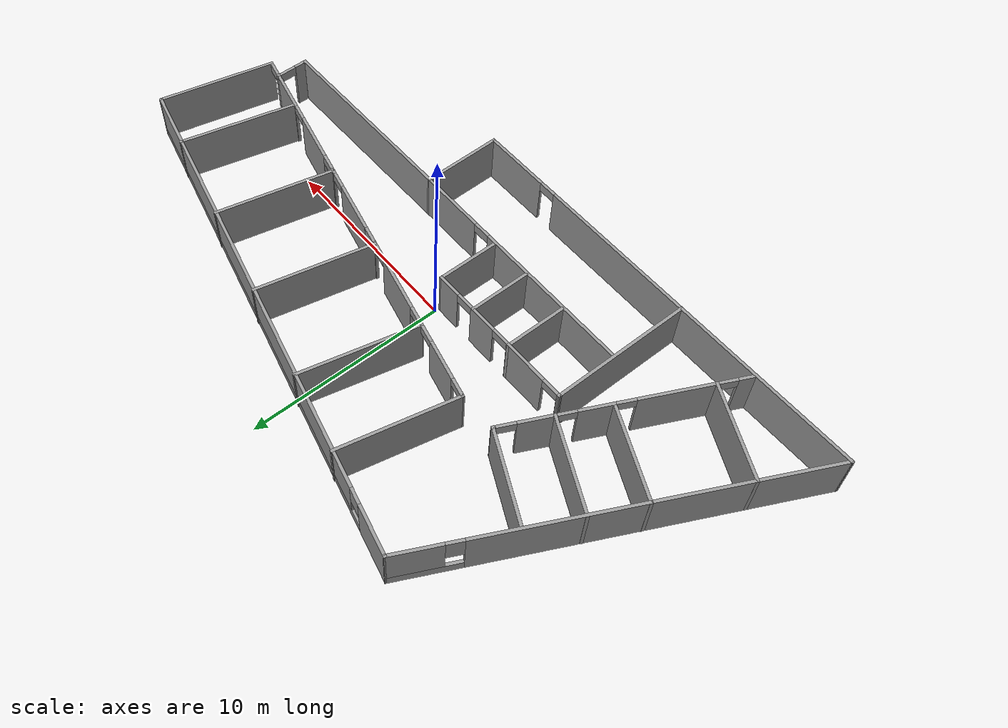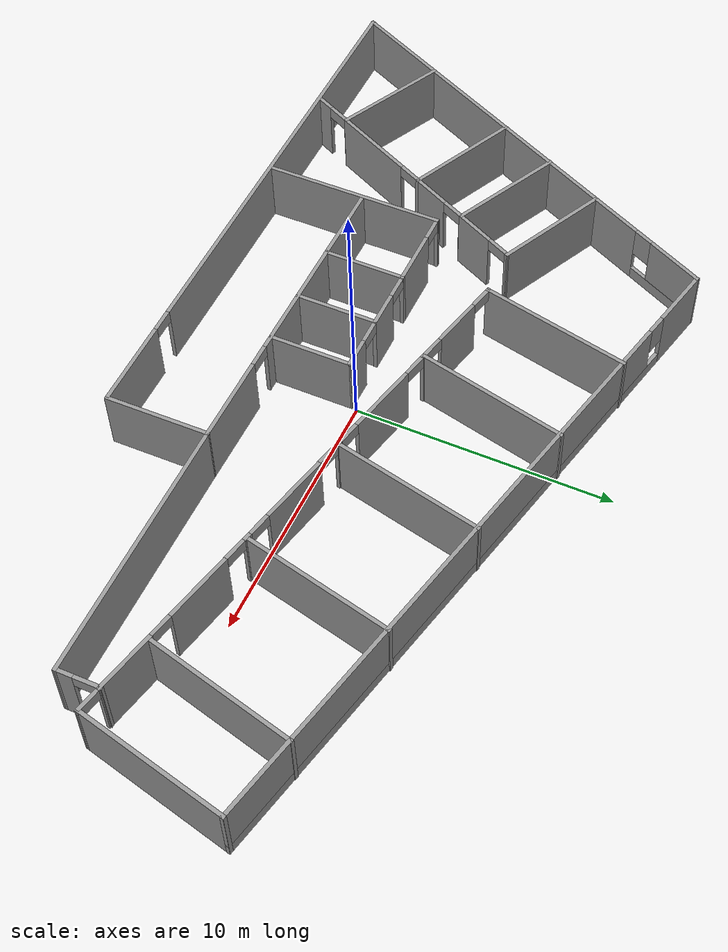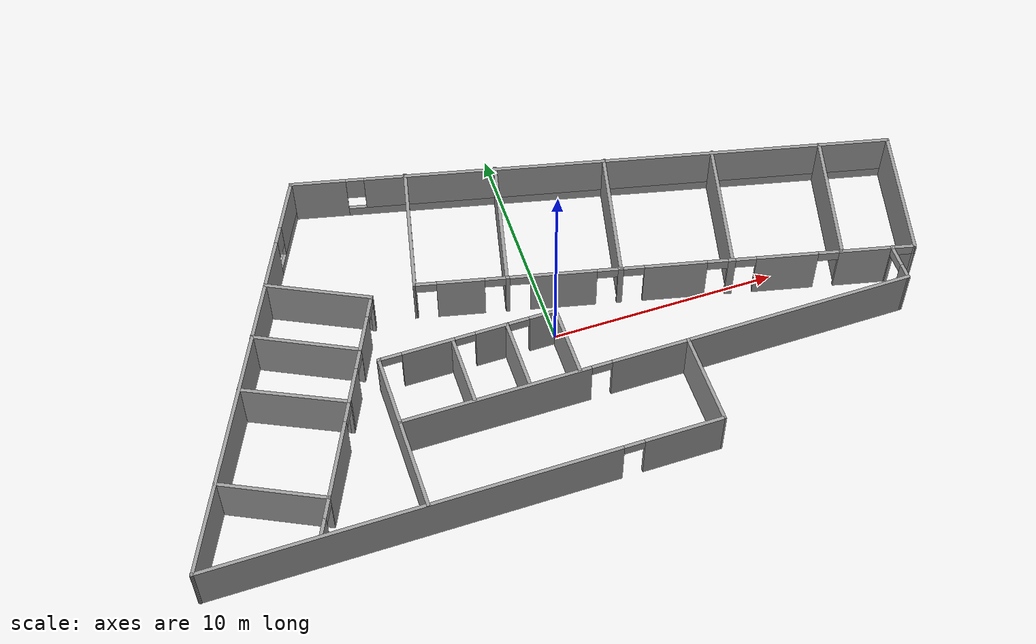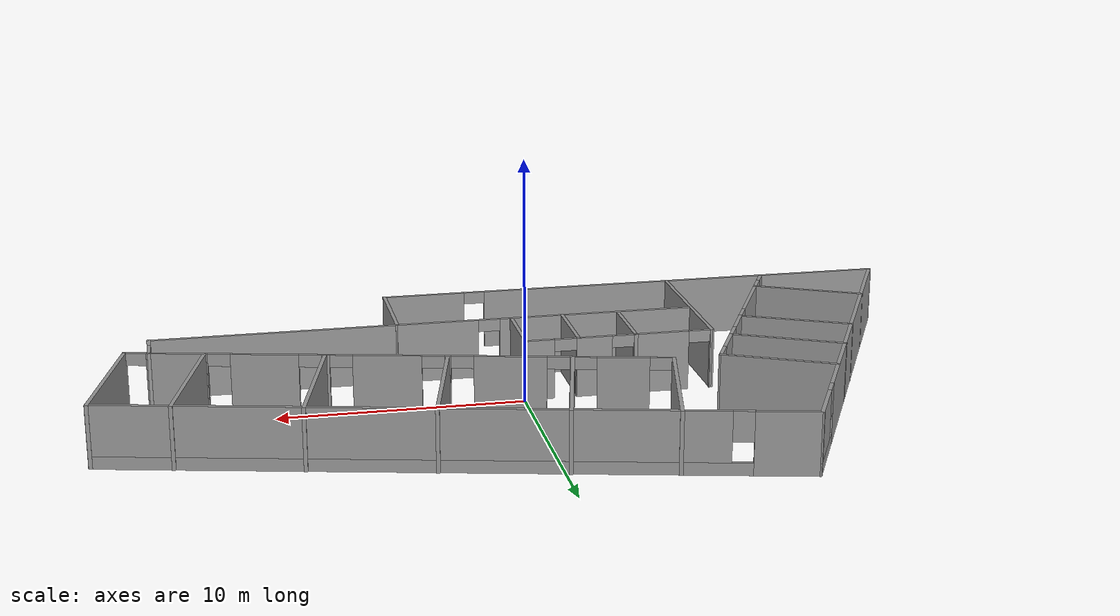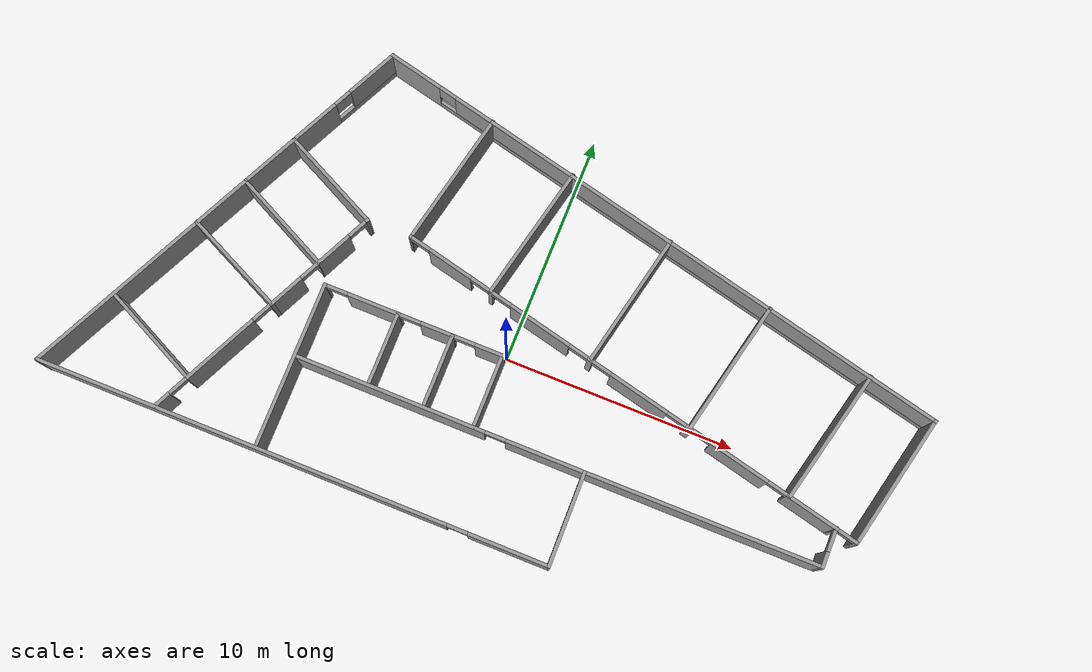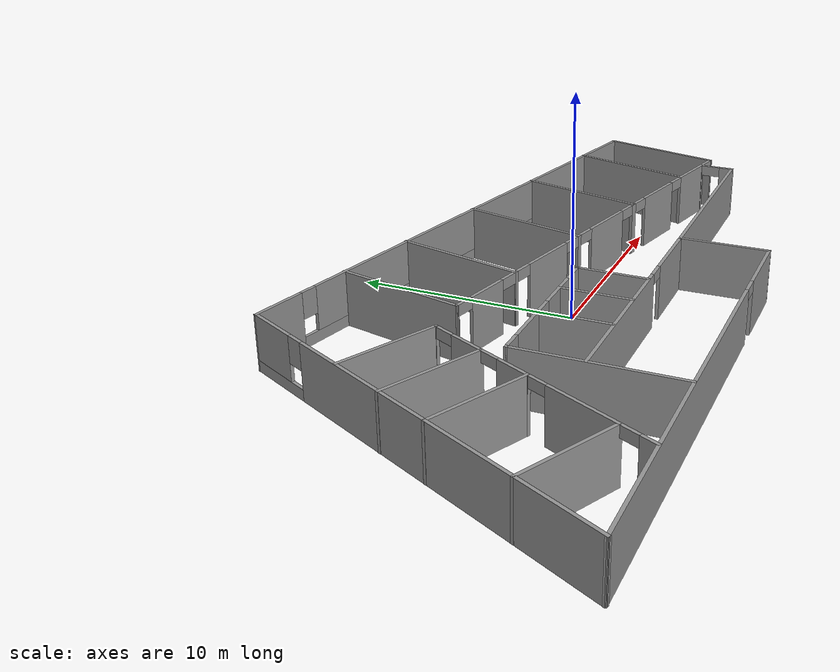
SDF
<?xml version='1.0'?>
<sdf version='1.7'>

  <world name="imvs_world">
  <model name='imvs'>
    <pose>-0.225202 1.20212 0 0 -0 0</pose>
    <link name='Wall_1'>
      <pose>-13.0101 0 0 0 -0 1.11528</pose>
      <visual name='Wall_1_Visual_0'>
        <pose>-1.62438 0 1.25 0 -0 0</pose>
        <geometry>
          <box>
            <size>15.9871 0.15 2.5</size>
          </box>
        </geometry>
        <material>
          <script>
            <uri>file://media/materials/scripts/gazebo.material</uri>
            <name>Gazebo/Grey</name>
          </script>
          <ambient>1 1 1 1</ambient>
        </material>
        <meta>
          <layer>0</layer>
        </meta>
      </visual>
      <collision name='Wall_1_Collision_0'>
        <geometry>
          <box>
            <size>15.9871 0.15 2.5</size>
          </box>
        </geometry>
        <pose>-1.62438 0 1.25 0 -0 0</pose>
      </collision>
      <visual name='Wall_1_Visual_1'>
        <pose>7.99357 0 0.25 0 -0 0</pose>
        <geometry>
          <box>
            <size>3.24876 0.15 0.5</size>
          </box>
        </geometry>
        <material>
          <script>
            <uri>file://media/materials/scripts/gazebo.material</uri>
            <name>Gazebo/Grey</name>
          </script>
          <ambient>1 1 1 1</ambient>
        </material>
        <meta>
          <layer>0</layer>
        </meta>
      </visual>
      <collision name='Wall_1_Collision_1'>
        <geometry>
          <box>
            <size>3.24876 0.15 0.5</size>
          </box>
        </geometry>
        <pose>7.99357 0 0.25 0 -0 0</pose>
      </collision>
      <visual name='Wall_1_Visual_2'>
        <pose>8.39357 0 1.5 0 -0 0</pose>
        <geometry>
          <box>
            <size>2.44876 0.15 2</size>
          </box>
        </geometry>
        <material>
          <script>
            <uri>file://media/materials/scripts/gazebo.material</uri>
            <name>Gazebo/Grey</name>
          </script>
          <ambient>1 1 1 1</ambient>
        </material>
        <meta>
          <layer>0</layer>
        </meta>
      </visual>
      <collision name='Wall_1_Collision_2'>
        <geometry>
          <box>
            <size>2.44876 0.15 2</size>
          </box>
        </geometry>
        <pose>8.39357 0 1.5 0 -0 0</pose>
      </collision>
      <visual name='Wall_1_Visual_3'>
        <pose>6.76919 0 1.9 0 -0 0</pose>
        <geometry>
          <box>
            <size>0.8 0.15 1.2</size>
          </box>
        </geometry>
        <material>
          <script>
            <uri>file://media/materials/scripts/gazebo.material</uri>
            <name>Gazebo/Grey</name>
          </script>
          <ambient>1 1 1 1</ambient>
        </material>
        <meta>
          <layer>0</layer>
        </meta>
      </visual>
      <collision name='Wall_1_Collision_3'>
        <geometry>
          <box>
            <size>0.8 0.15 1.2</size>
          </box>
        </geometry>
        <pose>6.76919 0 1.9 0 -0 0</pose>
      </collision>
    </link>
    <link name='Wall_11'>
      <collision name='Wall_11_Collision'>
        <geometry>
          <box>
            <size>7.25 0.15 2.5</size>
          </box>
        </geometry>
        <pose>0 0 1.25 0 -0 0</pose>
      </collision>
      <visual name='Wall_11_Visual'>
        <pose>0 0 1.25 0 -0 0</pose>
        <geometry>
          <box>
            <size>7.25 0.15 2.5</size>
          </box>
        </geometry>
        <material>
          <script>
            <uri>file://media/materials/scripts/gazebo.material</uri>
            <name>Gazebo/Grey</name>
          </script>
          <ambient>1 1 1 1</ambient>
        </material>
        <meta>
          <layer>0</layer>
        </meta>
      </visual>
      <pose>-7.64122 -4.99396 0 0 -0 1.5708</pose>
    </link>
    <link name='Wall_13'>
      <collision name='Wall_13_Collision'>
        <geometry>
          <box>
            <size>4.11757 0.15 2.5</size>
          </box>
        </geometry>
        <pose>0 0 1.25 0 -0 0</pose>
      </collision>
      <visual name='Wall_13_Visual'>
        <pose>0 0 1.25 0 -0 0</pose>
        <geometry>
          <box>
            <size>4.11757 0.15 2.5</size>
          </box>
        </geometry>
        <material>
          <script>
            <uri>file://media/materials/scripts/gazebo.material</uri>
            <name>Gazebo/Grey</name>
          </script>
          <ambient>1 1 1 1</ambient>
        </material>
        <meta>
          <layer>0</layer>
        </meta>
      </visual>
      <pose>4.95128 -6.58321 0 0 -0 -1.5592</pose>
    </link>
    <link name='Wall_16'>
      <pose>-1.35611 -4.58194 0 0 -0 -0.002788</pose>
      <visual name='Wall_16_Visual_0'>
        <pose>-2.18181 0 1.25 0 -0 0</pose>
        <geometry>
          <box>
            <size>8.3552 0.15 2.5</size>
          </box>
        </geometry>
        <material>
          <script>
            <uri>file://media/materials/scripts/gazebo.material</uri>
            <name>Gazebo/Grey</name>
          </script>
          <ambient>1 1 1 1</ambient>
        </material>
        <meta>
          <layer>0</layer>
        </meta>
      </visual>
      <collision name='Wall_16_Collision_0'>
        <geometry>
          <box>
            <size>8.3552 0.15 2.5</size>
          </box>
        </geometry>
        <pose>-2.18181 0 1.25 0 -0 0</pose>
      </collision>
      <visual name='Wall_16_Visual_1'>
        <pose>4.6276 0 1.25 0 -0 0</pose>
        <geometry>
          <box>
            <size>3.46362 0.15 2.5</size>
          </box>
        </geometry>
        <material>
          <script>
            <uri>file://media/materials/scripts/gazebo.material</uri>
            <name>Gazebo/Grey</name>
          </script>
          <ambient>1 1 1 1</ambient>
        </material>
        <meta>
          <layer>0</layer>
        </meta>
      </visual>
      <collision name='Wall_16_Collision_1'>
        <geometry>
          <box>
            <size>3.46362 0.15 2.5</size>
          </box>
        </geometry>
        <pose>4.6276 0 1.25 0 -0 0</pose>
      </collision>
      <visual name='Wall_16_Visual_2'>
        <pose>2.44579 0 2.25 0 -0 0</pose>
        <geometry>
          <box>
            <size>0.9 0.15 0.5</size>
          </box>
        </geometry>
        <material>
          <script>
            <uri>file://media/materials/scripts/gazebo.material</uri>
            <name>Gazebo/Grey</name>
          </script>
          <ambient>1 1 1 1</ambient>
        </material>
        <meta>
          <layer>0</layer>
        </meta>
      </visual>
      <collision name='Wall_16_Collision_2'>
        <geometry>
          <box>
            <size>0.9 0.15 0.5</size>
          </box>
        </geometry>
        <pose>2.44579 0 2.25 0 -0 0</pose>
      </collision>
    </link>
    <link name='Wall_18'>
      <pose>-3.75463 -1.44851 0 0 -0 -0.00117</pose>
      <visual name='Wall_18_Visual_0'>
        <pose>-3.87804 0 1.25 0 -0 0</pose>
        <geometry>
          <box>
            <size>0.167115 0.15 2.5</size>
          </box>
        </geometry>
        <material>
          <script>
            <uri>file://media/materials/scripts/gazebo.material</uri>
            <name>Gazebo/Grey</name>
          </script>
          <ambient>1 1 1 1</ambient>
        </material>
        <meta>
          <layer>0</layer>
        </meta>
      </visual>
      <collision name='Wall_18_Collision_0'>
        <geometry>
          <box>
            <size>0.167115 0.15 2.5</size>
          </box>
        </geometry>
        <pose>-3.87804 0 1.25 0 -0 0</pose>
      </collision>
      <visual name='Wall_18_Visual_1'>
        <pose>-1.7368 0 1.25 0 -0 0</pose>
        <geometry>
          <box>
            <size>2.31537 0.15 2.5</size>
          </box>
        </geometry>
        <material>
          <script>
            <uri>file://media/materials/scripts/gazebo.material</uri>
            <name>Gazebo/Grey</name>
          </script>
          <ambient>1 1 1 1</ambient>
        </material>
        <meta>
          <layer>0</layer>
        </meta>
      </visual>
      <collision name='Wall_18_Collision_1'>
        <geometry>
          <box>
            <size>2.31537 0.15 2.5</size>
          </box>
        </geometry>
        <pose>-1.7368 0 1.25 0 -0 0</pose>
      </collision>
      <visual name='Wall_18_Visual_2'>
        <pose>1.0621 0 1.25 0 -0 0</pose>
        <geometry>
          <box>
            <size>1.48242 0.15 2.5</size>
          </box>
        </geometry>
        <material>
          <script>
            <uri>file://media/materials/scripts/gazebo.material</uri>
            <name>Gazebo/Grey</name>
          </script>
          <ambient>1 1 1 1</ambient>
        </material>
        <meta>
          <layer>0</layer>
        </meta>
      </visual>
      <collision name='Wall_18_Collision_2'>
        <geometry>
          <box>
            <size>1.48242 0.15 2.5</size>
          </box>
        </geometry>
        <pose>1.0621 0 1.25 0 -0 0</pose>
      </collision>
      <visual name='Wall_18_Visual_3'>
        <pose>3.33245 0 1.25 0 -0 0</pose>
        <geometry>
          <box>
            <size>1.25828 0.15 2.5</size>
          </box>
        </geometry>
        <material>
          <script>
            <uri>file://media/materials/scripts/gazebo.material</uri>
            <name>Gazebo/Grey</name>
          </script>
          <ambient>1 1 1 1</ambient>
        </material>
        <meta>
          <layer>0</layer>
        </meta>
      </visual>
      <collision name='Wall_18_Collision_3'>
        <geometry>
          <box>
            <size>1.25828 0.15 2.5</size>
          </box>
        </geometry>
        <pose>3.33245 0 1.25 0 -0 0</pose>
      </collision>
      <visual name='Wall_18_Visual_4'>
        <pose>-3.34448 0 2.25 0 -0 0</pose>
        <geometry>
          <box>
            <size>0.9 0.15 0.5</size>
          </box>
        </geometry>
        <material>
          <script>
            <uri>file://media/materials/scripts/gazebo.material</uri>
            <name>Gazebo/Grey</name>
          </script>
          <ambient>1 1 1 1</ambient>
        </material>
        <meta>
          <layer>0</layer>
        </meta>
      </visual>
      <collision name='Wall_18_Collision_4'>
        <geometry>
          <box>
            <size>0.9 0.15 0.5</size>
          </box>
        </geometry>
        <pose>-3.34448 0 2.25 0 -0 0</pose>
      </collision>
      <visual name='Wall_18_Visual_5'>
        <pose>-0.129112 0 2.25 0 -0 0</pose>
        <geometry>
          <box>
            <size>0.9 0.15 0.5</size>
          </box>
        </geometry>
        <material>
          <script>
            <uri>file://media/materials/scripts/gazebo.material</uri>
            <name>Gazebo/Grey</name>
          </script>
          <ambient>1 1 1 1</ambient>
        </material>
        <meta>
          <layer>0</layer>
        </meta>
      </visual>
      <collision name='Wall_18_Collision_5'>
        <geometry>
          <box>
            <size>0.9 0.15 0.5</size>
          </box>
        </geometry>
        <pose>-0.129112 0 2.25 0 -0 0</pose>
      </collision>
      <visual name='Wall_18_Visual_6'>
        <pose>2.25331 0 2.25 0 -0 0</pose>
        <geometry>
          <box>
            <size>0.9 0.15 0.5</size>
          </box>
        </geometry>
        <material>
          <script>
            <uri>file://media/materials/scripts/gazebo.material</uri>
            <name>Gazebo/Grey</name>
          </script>
          <ambient>1 1 1 1</ambient>
        </material>
        <meta>
          <layer>0</layer>
        </meta>
      </visual>
      <collision name='Wall_18_Collision_6'>
        <geometry>
          <box>
            <size>0.9 0.15 0.5</size>
          </box>
        </geometry>
        <pose>2.25331 0 2.25 0 -0 0</pose>
      </collision>
    </link>
    <link name='Wall_19'>
      <collision name='Wall_19_Collision'>
        <geometry>
          <box>
            <size>3.25 0.15 2.5</size>
          </box>
        </geometry>
        <pose>0 0 1.25 0 -0 0</pose>
      </collision>
      <visual name='Wall_19_Visual'>
        <pose>0 0 1.25 0 -0 0</pose>
        <geometry>
          <box>
            <size>3.25 0.15 2.5</size>
          </box>
        </geometry>
        <material>
          <script>
            <uri>file://media/materials/scripts/gazebo.material</uri>
            <name>Gazebo/Grey</name>
          </script>
          <ambient>1 1 1 1</ambient>
        </material>
        <meta>
          <layer>0</layer>
        </meta>
      </visual>
      <pose>0.131964 -3.00305 0 0 -0 -1.5708</pose>
    </link>
    <link name='Wall_2'>
      <pose>4.20337 5.5484 0 0 -0 -0.228109</pose>
      <visual name='Wall_2_Visual_0'>
        <pose>-12.1878 0 1.25 0 -0 0</pose>
        <geometry>
          <box>
            <size>2.49705 0.15 2.5</size>
          </box>
        </geometry>
        <material>
          <script>
            <uri>file://media/materials/scripts/gazebo.material</uri>
            <name>Gazebo/Grey</name>
          </script>
          <ambient>1 1 1 1</ambient>
        </material>
        <meta>
          <layer>0</layer>
        </meta>
      </visual>
      <collision name='Wall_2_Collision_0'>
        <geometry>
          <box>
            <size>2.49705 0.15 2.5</size>
          </box>
        </geometry>
        <pose>-12.1878 0 1.25 0 -0 0</pose>
      </collision>
      <visual name='Wall_2_Visual_1'>
        <pose>1.24852 0 0.25 0 -0 0</pose>
        <geometry>
          <box>
            <size>24.3757 0.15 0.5</size>
          </box>
        </geometry>
        <material>
          <script>
            <uri>file://media/materials/scripts/gazebo.material</uri>
            <name>Gazebo/Grey</name>
          </script>
          <ambient>1 1 1 1</ambient>
        </material>
        <meta>
          <layer>0</layer>
        </meta>
      </visual>
      <collision name='Wall_2_Collision_1'>
        <geometry>
          <box>
            <size>24.3757 0.15 0.5</size>
          </box>
        </geometry>
        <pose>1.24852 0 0.25 0 -0 0</pose>
      </collision>
      <visual name='Wall_2_Visual_2'>
        <pose>1.64852 0 1.5 0 -0 0</pose>
        <geometry>
          <box>
            <size>23.5757 0.15 2</size>
          </box>
        </geometry>
        <material>
          <script>
            <uri>file://media/materials/scripts/gazebo.material</uri>
            <name>Gazebo/Grey</name>
          </script>
          <ambient>1 1 1 1</ambient>
        </material>
        <meta>
          <layer>0</layer>
        </meta>
      </visual>
      <collision name='Wall_2_Collision_2'>
        <geometry>
          <box>
            <size>23.5757 0.15 2</size>
          </box>
        </geometry>
        <pose>1.64852 0 1.5 0 -0 0</pose>
      </collision>
      <visual name='Wall_2_Visual_3'>
        <pose>-10.5393 0 1.9 0 -0 0</pose>
        <geometry>
          <box>
            <size>0.8 0.15 1.2</size>
          </box>
        </geometry>
        <material>
          <script>
            <uri>file://media/materials/scripts/gazebo.material</uri>
            <name>Gazebo/Grey</name>
          </script>
          <ambient>1 1 1 1</ambient>
        </material>
        <meta>
          <layer>0</layer>
        </meta>
      </visual>
      <collision name='Wall_2_Collision_3'>
        <geometry>
          <box>
            <size>0.8 0.15 1.2</size>
          </box>
        </geometry>
        <pose>-10.5393 0 1.9 0 -0 0</pose>
      </collision>
    </link>
    <link name='Wall_21'>
      <collision name='Wall_21_Collision'>
        <geometry>
          <box>
            <size>3.23984 0.15 2.5</size>
          </box>
        </geometry>
        <pose>0 0 1.25 0 -0 0</pose>
      </collision>
      <visual name='Wall_21_Visual'>
        <pose>0 0 1.25 0 -0 0</pose>
        <geometry>
          <box>
            <size>3.23984 0.15 2.5</size>
          </box>
        </geometry>
        <material>
          <script>
            <uri>file://media/materials/scripts/gazebo.material</uri>
            <name>Gazebo/Grey</name>
          </script>
          <ambient>1 1 1 1</ambient>
        </material>
        <meta>
          <layer>0</layer>
        </meta>
      </visual>
      <pose>-4.43167 -2.99013 0 0 -0 -1.572</pose>
    </link>
    <link name='Wall_23'>
      <collision name='Wall_23_Collision'>
        <geometry>
          <box>
            <size>3.25 0.15 2.5</size>
          </box>
        </geometry>
        <pose>0 0 1.25 0 -0 0</pose>
      </collision>
      <visual name='Wall_23_Visual'>
        <pose>0 0 1.25 0 -0 0</pose>
        <geometry>
          <box>
            <size>3.25 0.15 2.5</size>
          </box>
        </geometry>
        <material>
          <script>
            <uri>file://media/materials/scripts/gazebo.material</uri>
            <name>Gazebo/Grey</name>
          </script>
          <ambient>1 1 1 1</ambient>
        </material>
        <meta>
          <layer>0</layer>
        </meta>
      </visual>
      <pose>-2.04396 -3.01471 0 0 -0 -1.5708</pose>
    </link>
    <link name='Wall_25'>
      <collision name='Wall_25_Collision'>
        <geometry>
          <box>
            <size>4.71911 0.15 2.5</size>
          </box>
        </geometry>
        <pose>0 0 1.25 0 -0 0</pose>
      </collision>
      <visual name='Wall_25_Visual'>
        <pose>0 0 1.25 0 -0 0</pose>
        <geometry>
          <box>
            <size>4.71911 0.15 2.5</size>
          </box>
        </geometry>
        <material>
          <script>
            <uri>file://media/materials/scripts/gazebo.material</uri>
            <name>Gazebo/Grey</name>
          </script>
          <ambient>1 1 1 1</ambient>
        </material>
        <meta>
          <layer>0</layer>
        </meta>
      </visual>
      <pose>-9.13228 2.69284 0 0 -0 2.68665</pose>
    </link>
    <link name='Wall_27'>
      <pose>-9.55458 -3.42391 0 0 -0 -2.02154</pose>
      <visual name='Wall_27_Visual_0'>
        <pose>-5.66757 0 1.25 0 -0 0</pose>
        <geometry>
          <box>
            <size>0.175281 0.15 2.5</size>
          </box>
        </geometry>
        <material>
          <script>
            <uri>file://media/materials/scripts/gazebo.material</uri>
            <name>Gazebo/Grey</name>
          </script>
          <ambient>1 1 1 1</ambient>
        </material>
        <meta>
          <layer>0</layer>
        </meta>
      </visual>
      <collision name='Wall_27_Collision_0'>
        <geometry>
          <box>
            <size>0.175281 0.15 2.5</size>
          </box>
        </geometry>
        <pose>-5.66757 0 1.25 0 -0 0</pose>
      </collision>
      <visual name='Wall_27_Visual_1'>
        <pose>-3.8343 0 1.25 0 -0 0</pose>
        <geometry>
          <box>
            <size>1.69127 0.15 2.5</size>
          </box>
        </geometry>
        <material>
          <script>
            <uri>file://media/materials/scripts/gazebo.material</uri>
            <name>Gazebo/Grey</name>
          </script>
          <ambient>1 1 1 1</ambient>
        </material>
        <meta>
          <layer>0</layer>
        </meta>
      </visual>
      <collision name='Wall_27_Collision_1'>
        <geometry>
          <box>
            <size>1.69127 0.15 2.5</size>
          </box>
        </geometry>
        <pose>-3.8343 0 1.25 0 -0 0</pose>
      </collision>
      <visual name='Wall_27_Visual_2'>
        <pose>-1.25514 0 1.25 0 -0 0</pose>
        <geometry>
          <box>
            <size>1.66705 0.15 2.5</size>
          </box>
        </geometry>
        <material>
          <script>
            <uri>file://media/materials/scripts/gazebo.material</uri>
            <name>Gazebo/Grey</name>
          </script>
          <ambient>1 1 1 1</ambient>
        </material>
        <meta>
          <layer>0</layer>
        </meta>
      </visual>
      <collision name='Wall_27_Collision_2'>
        <geometry>
          <box>
            <size>1.66705 0.15 2.5</size>
          </box>
        </geometry>
        <pose>-1.25514 0 1.25 0 -0 0</pose>
      </collision>
      <visual name='Wall_27_Visual_3'>
        <pose>2.2529 0 1.25 0 -0 0</pose>
        <geometry>
          <box>
            <size>3.54902 0.15 2.5</size>
          </box>
        </geometry>
        <material>
          <script>
            <uri>file://media/materials/scripts/gazebo.material</uri>
            <name>Gazebo/Grey</name>
          </script>
          <ambient>1 1 1 1</ambient>
        </material>
        <meta>
          <layer>0</layer>
        </meta>
      </visual>
      <collision name='Wall_27_Collision_3'>
        <geometry>
          <box>
            <size>3.54902 0.15 2.5</size>
          </box>
        </geometry>
        <pose>2.2529 0 1.25 0 -0 0</pose>
      </collision>
      <visual name='Wall_27_Visual_4'>
        <pose>5.34131 0 1.25 0 -0 0</pose>
        <geometry>
          <box>
            <size>0.827806 0.15 2.5</size>
          </box>
        </geometry>
        <material>
          <script>
            <uri>file://media/materials/scripts/gazebo.material</uri>
            <name>Gazebo/Grey</name>
          </script>
          <ambient>1 1 1 1</ambient>
        </material>
        <meta>
          <layer>0</layer>
        </meta>
      </visual>
      <collision name='Wall_27_Collision_4'>
        <geometry>
          <box>
            <size>0.827806 0.15 2.5</size>
          </box>
        </geometry>
        <pose>5.34131 0 1.25 0 -0 0</pose>
      </collision>
      <visual name='Wall_27_Visual_5'>
        <pose>-5.12993 0 2.25 0 -0 0</pose>
        <geometry>
          <box>
            <size>0.9 0.15 0.5</size>
          </box>
        </geometry>
        <material>
          <script>
            <uri>file://media/materials/scripts/gazebo.material</uri>
            <name>Gazebo/Grey</name>
          </script>
          <ambient>1 1 1 1</ambient>
        </material>
        <meta>
          <layer>0</layer>
        </meta>
      </visual>
      <collision name='Wall_27_Collision_5'>
        <geometry>
          <box>
            <size>0.9 0.15 0.5</size>
          </box>
        </geometry>
        <pose>-5.12993 0 2.25 0 -0 0</pose>
      </collision>
      <visual name='Wall_27_Visual_6'>
        <pose>-2.53866 0 2.25 0 -0 0</pose>
        <geometry>
          <box>
            <size>0.9 0.15 0.5</size>
          </box>
        </geometry>
        <material>
          <script>
            <uri>file://media/materials/scripts/gazebo.material</uri>
            <name>Gazebo/Grey</name>
          </script>
          <ambient>1 1 1 1</ambient>
        </material>
        <meta>
          <layer>0</layer>
        </meta>
      </visual>
      <collision name='Wall_27_Collision_6'>
        <geometry>
          <box>
            <size>0.9 0.15 0.5</size>
          </box>
        </geometry>
        <pose>-2.53866 0 2.25 0 -0 0</pose>
      </collision>
      <visual name='Wall_27_Visual_7'>
        <pose>0.028384 0 2.25 0 -0 0</pose>
        <geometry>
          <box>
            <size>0.9 0.15 0.5</size>
          </box>
        </geometry>
        <material>
          <script>
            <uri>file://media/materials/scripts/gazebo.material</uri>
            <name>Gazebo/Grey</name>
          </script>
          <ambient>1 1 1 1</ambient>
        </material>
        <meta>
          <layer>0</layer>
        </meta>
      </visual>
      <collision name='Wall_27_Collision_7'>
        <geometry>
          <box>
            <size>0.9 0.15 0.5</size>
          </box>
        </geometry>
        <pose>0.028384 0 2.25 0 -0 0</pose>
      </collision>
      <visual name='Wall_27_Visual_8'>
        <pose>4.47741 0 2.25 0 -0 0</pose>
        <geometry>
          <box>
            <size>0.9 0.15 0.5</size>
          </box>
        </geometry>
        <material>
          <script>
            <uri>file://media/materials/scripts/gazebo.material</uri>
            <name>Gazebo/Grey</name>
          </script>
          <ambient>1 1 1 1</ambient>
        </material>
        <meta>
          <layer>0</layer>
        </meta>
      </visual>
      <collision name='Wall_27_Collision_8'>
        <geometry>
          <box>
            <size>0.9 0.15 0.5</size>
          </box>
        </geometry>
        <pose>4.47741 0 2.25 0 -0 0</pose>
      </collision>
    </link>
    <link name='Wall_29'>
      <collision name='Wall_29_Collision'>
        <geometry>
          <box>
            <size>4.77004 0.15 2.5</size>
          </box>
        </geometry>
        <pose>0 0 1.25 0 -0 0</pose>
      </collision>
      <visual name='Wall_29_Visual'>
        <pose>0 0 1.25 0 -0 0</pose>
        <geometry>
          <box>
            <size>4.77004 0.15 2.5</size>
          </box>
        </geometry>
        <material>
          <script>
            <uri>file://media/materials/scripts/gazebo.material</uri>
            <name>Gazebo/Grey</name>
          </script>
          <ambient>1 1 1 1</ambient>
        </material>
        <meta>
          <layer>0</layer>
        </meta>
      </visual>
      <pose>-13.3727 -5.9839 0 0 -0 -0.456072</pose>
    </link>
    <link name='Wall_31'>
      <collision name='Wall_31_Collision'>
        <geometry>
          <box>
            <size>4.77085 0.15 2.5</size>
          </box>
        </geometry>
        <pose>0 0 1.25 0 -0 0</pose>
      </collision>
      <visual name='Wall_31_Visual'>
        <pose>0 0 1.25 0 -0 0</pose>
        <geometry>
          <box>
            <size>4.77085 0.15 2.5</size>
          </box>
        </geometry>
        <material>
          <script>
            <uri>file://media/materials/scripts/gazebo.material</uri>
            <name>Gazebo/Grey</name>
          </script>
          <ambient>1 1 1 1</ambient>
        </material>
        <meta>
          <layer>0</layer>
        </meta>
      </visual>
      <pose>-11.4205 -1.9839 0 0 -0 -0.443448</pose>
    </link>
    <link name='Wall_33'>
      <collision name='Wall_33_Collision'>
        <geometry>
          <box>
            <size>4.75302 0.15 2.5</size>
          </box>
        </geometry>
        <pose>0 0 1.25 0 -0 0</pose>
      </collision>
      <visual name='Wall_33_Visual'>
        <pose>0 0 1.25 0 -0 0</pose>
        <geometry>
          <box>
            <size>4.75302 0.15 2.5</size>
          </box>
        </geometry>
        <material>
          <script>
            <uri>file://media/materials/scripts/gazebo.material</uri>
            <name>Gazebo/Grey</name>
          </script>
          <ambient>1 1 1 1</ambient>
        </material>
        <meta>
          <layer>0</layer>
        </meta>
      </visual>
      <pose>-10.2996 0.331084 0 0 -0 -0.458061</pose>
    </link>
    <link name='Wall_35'>
      <collision name='Wall_35_Collision'>
        <geometry>
          <box>
            <size>6.04418 0.15 2.5</size>
          </box>
        </geometry>
        <pose>0 0 1.25 0 -0 0</pose>
      </collision>
      <visual name='Wall_35_Visual'>
        <pose>0 0 1.25 0 -0 0</pose>
        <geometry>
          <box>
            <size>6.04418 0.15 2.5</size>
          </box>
        </geometry>
        <material>
          <script>
            <uri>file://media/materials/scripts/gazebo.material</uri>
            <name>Gazebo/Grey</name>
          </script>
          <ambient>1 1 1 1</ambient>
        </material>
        <meta>
          <layer>0</layer>
        </meta>
      </visual>
      <pose>-4.51701 4.58455 0 0 -0 -1.78914</pose>
    </link>
    <link name='Wall_37'>
      <pose>5.39367 -0.737357 0 0 -0 -0.227734</pose>
      <visual name='Wall_37_Visual_0'>
        <pose>-10.8479 0 1.25 0 -0 0</pose>
        <geometry>
          <box>
            <size>0.111606 0.15 2.5</size>
          </box>
        </geometry>
        <material>
          <script>
            <uri>file://media/materials/scripts/gazebo.material</uri>
            <name>Gazebo/Grey</name>
          </script>
          <ambient>1 1 1 1</ambient>
        </material>
        <meta>
          <layer>0</layer>
        </meta>
      </visual>
      <collision name='Wall_37_Collision_0'>
        <geometry>
          <box>
            <size>0.111606 0.15 2.5</size>
          </box>
        </geometry>
        <pose>-10.8479 0 1.25 0 -0 0</pose>
      </collision>
      <visual name='Wall_37_Visual_1'>
        <pose>-8.85799 0 1.25 0 -0 0</pose>
        <geometry>
          <box>
            <size>2.06812 0.15 2.5</size>
          </box>
        </geometry>
        <material>
          <script>
            <uri>file://media/materials/scripts/gazebo.material</uri>
            <name>Gazebo/Grey</name>
          </script>
          <ambient>1 1 1 1</ambient>
        </material>
        <meta>
          <layer>0</layer>
        </meta>
      </visual>
      <collision name='Wall_37_Collision_1'>
        <geometry>
          <box>
            <size>2.06812 0.15 2.5</size>
          </box>
        </geometry>
        <pose>-8.85799 0 1.25 0 -0 0</pose>
      </collision>
      <visual name='Wall_37_Visual_2'>
        <pose>-6.83724 0 1.25 0 -0 0</pose>
        <geometry>
          <box>
            <size>0.17338 0.15 2.5</size>
          </box>
        </geometry>
        <material>
          <script>
            <uri>file://media/materials/scripts/gazebo.material</uri>
            <name>Gazebo/Grey</name>
          </script>
          <ambient>1 1 1 1</ambient>
        </material>
        <meta>
          <layer>0</layer>
        </meta>
      </visual>
      <collision name='Wall_37_Collision_2'>
        <geometry>
          <box>
            <size>0.17338 0.15 2.5</size>
          </box>
        </geometry>
        <pose>-6.83724 0 1.25 0 -0 0</pose>
      </collision>
      <visual name='Wall_37_Visual_3'>
        <pose>-4.41776 0 1.25 0 -0 0</pose>
        <geometry>
          <box>
            <size>2.86559 0.15 2.5</size>
          </box>
        </geometry>
        <material>
          <script>
            <uri>file://media/materials/scripts/gazebo.material</uri>
            <name>Gazebo/Grey</name>
          </script>
          <ambient>1 1 1 1</ambient>
        </material>
        <meta>
          <layer>0</layer>
        </meta>
      </visual>
      <collision name='Wall_37_Collision_3'>
        <geometry>
          <box>
            <size>2.86559 0.15 2.5</size>
          </box>
        </geometry>
        <pose>-4.41776 0 1.25 0 -0 0</pose>
      </collision>
      <visual name='Wall_37_Visual_4'>
        <pose>-1.96462 0 1.25 0 -0 0</pose>
        <geometry>
          <box>
            <size>0.240692 0.15 2.5</size>
          </box>
        </geometry>
        <material>
          <script>
            <uri>file://media/materials/scripts/gazebo.material</uri>
            <name>Gazebo/Grey</name>
          </script>
          <ambient>1 1 1 1</ambient>
        </material>
        <meta>
          <layer>0</layer>
        </meta>
      </visual>
      <collision name='Wall_37_Collision_4'>
        <geometry>
          <box>
            <size>0.240692 0.15 2.5</size>
          </box>
        </geometry>
        <pose>-1.96462 0 1.25 0 -0 0</pose>
      </collision>
      <visual name='Wall_37_Visual_5'>
        <pose>0.423527 0 1.25 0 -0 0</pose>
        <geometry>
          <box>
            <size>2.73561 0.15 2.5</size>
          </box>
        </geometry>
        <material>
          <script>
            <uri>file://media/materials/scripts/gazebo.material</uri>
            <name>Gazebo/Grey</name>
          </script>
          <ambient>1 1 1 1</ambient>
        </material>
        <meta>
          <layer>0</layer>
        </meta>
      </visual>
      <collision name='Wall_37_Collision_5'>
        <geometry>
          <box>
            <size>2.73561 0.15 2.5</size>
          </box>
        </geometry>
        <pose>0.423527 0 1.25 0 -0 0</pose>
      </collision>
      <visual name='Wall_37_Visual_6'>
        <pose>2.85249 0 1.25 0 -0 0</pose>
        <geometry>
          <box>
            <size>0.322314 0.15 2.5</size>
          </box>
        </geometry>
        <material>
          <script>
            <uri>file://media/materials/scripts/gazebo.material</uri>
            <name>Gazebo/Grey</name>
          </script>
          <ambient>1 1 1 1</ambient>
        </material>
        <meta>
          <layer>0</layer>
        </meta>
      </visual>
      <collision name='Wall_37_Collision_6'>
        <geometry>
          <box>
            <size>0.322314 0.15 2.5</size>
          </box>
        </geometry>
        <pose>2.85249 0 1.25 0 -0 0</pose>
      </collision>
      <visual name='Wall_37_Visual_7'>
        <pose>5.26757 0 1.25 0 -0 0</pose>
        <geometry>
          <box>
            <size>2.70785 0.15 2.5</size>
          </box>
        </geometry>
        <material>
          <script>
            <uri>file://media/materials/scripts/gazebo.material</uri>
            <name>Gazebo/Grey</name>
          </script>
          <ambient>1 1 1 1</ambient>
        </material>
        <meta>
          <layer>0</layer>
        </meta>
      </visual>
      <collision name='Wall_37_Collision_7'>
        <geometry>
          <box>
            <size>2.70785 0.15 2.5</size>
          </box>
        </geometry>
        <pose>5.26757 0 1.25 0 -0 0</pose>
      </collision>
      <visual name='Wall_37_Visual_8'>
        <pose>8.73772 0 1.25 0 -0 0</pose>
        <geometry>
          <box>
            <size>2.43244 0.15 2.5</size>
          </box>
        </geometry>
        <material>
          <script>
            <uri>file://media/materials/scripts/gazebo.material</uri>
            <name>Gazebo/Grey</name>
          </script>
          <ambient>1 1 1 1</ambient>
        </material>
        <meta>
          <layer>0</layer>
        </meta>
      </visual>
      <collision name='Wall_37_Collision_8'>
        <geometry>
          <box>
            <size>2.43244 0.15 2.5</size>
          </box>
        </geometry>
        <pose>8.73772 0 1.25 0 -0 0</pose>
      </collision>
      <visual name='Wall_37_Visual_9'>
        <pose>10.8788 0 1.25 0 -0 0</pose>
        <geometry>
          <box>
            <size>0.049723 0.15 2.5</size>
          </box>
        </geometry>
        <material>
          <script>
            <uri>file://media/materials/scripts/gazebo.material</uri>
            <name>Gazebo/Grey</name>
          </script>
          <ambient>1 1 1 1</ambient>
        </material>
        <meta>
          <layer>0</layer>
        </meta>
      </visual>
      <collision name='Wall_37_Collision_9'>
        <geometry>
          <box>
            <size>0.049723 0.15 2.5</size>
          </box>
        </geometry>
        <pose>10.8788 0 1.25 0 -0 0</pose>
      </collision>
      <visual name='Wall_37_Visual_10'>
        <pose>-10.3421 0 2.25 0 -0 0</pose>
        <geometry>
          <box>
            <size>0.9 0.15 0.5</size>
          </box>
        </geometry>
        <material>
          <script>
            <uri>file://media/materials/scripts/gazebo.material</uri>
            <name>Gazebo/Grey</name>
          </script>
          <ambient>1 1 1 1</ambient>
        </material>
        <meta>
          <layer>0</layer>
        </meta>
      </visual>
      <collision name='Wall_37_Collision_10'>
        <geometry>
          <box>
            <size>0.9 0.15 0.5</size>
          </box>
        </geometry>
        <pose>-10.3421 0 2.25 0 -0 0</pose>
      </collision>
      <visual name='Wall_37_Visual_11'>
        <pose>-7.37393 0 2.25 0 -0 0</pose>
        <geometry>
          <box>
            <size>0.9 0.15 0.5</size>
          </box>
        </geometry>
        <material>
          <script>
            <uri>file://media/materials/scripts/gazebo.material</uri>
            <name>Gazebo/Grey</name>
          </script>
          <ambient>1 1 1 1</ambient>
        </material>
        <meta>
          <layer>0</layer>
        </meta>
      </visual>
      <collision name='Wall_37_Collision_11'>
        <geometry>
          <box>
            <size>0.9 0.15 0.5</size>
          </box>
        </geometry>
        <pose>-7.37393 0 2.25 0 -0 0</pose>
      </collision>
      <visual name='Wall_37_Visual_12'>
        <pose>-6.30055 0 2.25 0 -0 0</pose>
        <geometry>
          <box>
            <size>0.9 0.15 0.5</size>
          </box>
        </geometry>
        <material>
          <script>
            <uri>file://media/materials/scripts/gazebo.material</uri>
            <name>Gazebo/Grey</name>
          </script>
          <ambient>1 1 1 1</ambient>
        </material>
        <meta>
          <layer>0</layer>
        </meta>
      </visual>
      <collision name='Wall_37_Collision_12'>
        <geometry>
          <box>
            <size>0.9 0.15 0.5</size>
          </box>
        </geometry>
        <pose>-6.30055 0 2.25 0 -0 0</pose>
      </collision>
      <visual name='Wall_37_Visual_13'>
        <pose>-2.53497 0 2.25 0 -0 0</pose>
        <geometry>
          <box>
            <size>0.9 0.15 0.5</size>
          </box>
        </geometry>
        <material>
          <script>
            <uri>file://media/materials/scripts/gazebo.material</uri>
            <name>Gazebo/Grey</name>
          </script>
          <ambient>1 1 1 1</ambient>
        </material>
        <meta>
          <layer>0</layer>
        </meta>
      </visual>
      <collision name='Wall_37_Collision_13'>
        <geometry>
          <box>
            <size>0.9 0.15 0.5</size>
          </box>
        </geometry>
        <pose>-2.53497 0 2.25 0 -0 0</pose>
      </collision>
      <visual name='Wall_37_Visual_14'>
        <pose>-1.39428 0 2.25 0 -0 0</pose>
        <geometry>
          <box>
            <size>0.9 0.15 0.5</size>
          </box>
        </geometry>
        <material>
          <script>
            <uri>file://media/materials/scripts/gazebo.material</uri>
            <name>Gazebo/Grey</name>
          </script>
          <ambient>1 1 1 1</ambient>
        </material>
        <meta>
          <layer>0</layer>
        </meta>
      </visual>
      <collision name='Wall_37_Collision_14'>
        <geometry>
          <box>
            <size>0.9 0.15 0.5</size>
          </box>
        </geometry>
        <pose>-1.39428 0 2.25 0 -0 0</pose>
      </collision>
      <visual name='Wall_37_Visual_15'>
        <pose>2.24133 0 2.25 0 -0 0</pose>
        <geometry>
          <box>
            <size>0.9 0.15 0.5</size>
          </box>
        </geometry>
        <material>
          <script>
            <uri>file://media/materials/scripts/gazebo.material</uri>
            <name>Gazebo/Grey</name>
          </script>
          <ambient>1 1 1 1</ambient>
        </material>
        <meta>
          <layer>0</layer>
        </meta>
      </visual>
      <collision name='Wall_37_Collision_15'>
        <geometry>
          <box>
            <size>0.9 0.15 0.5</size>
          </box>
        </geometry>
        <pose>2.24133 0 2.25 0 -0 0</pose>
      </collision>
      <visual name='Wall_37_Visual_16'>
        <pose>3.46365 0 2.25 0 -0 0</pose>
        <geometry>
          <box>
            <size>0.9 0.15 0.5</size>
          </box>
        </geometry>
        <material>
          <script>
            <uri>file://media/materials/scripts/gazebo.material</uri>
            <name>Gazebo/Grey</name>
          </script>
          <ambient>1 1 1 1</ambient>
        </material>
        <meta>
          <layer>0</layer>
        </meta>
      </visual>
      <collision name='Wall_37_Collision_16'>
        <geometry>
          <box>
            <size>0.9 0.15 0.5</size>
          </box>
        </geometry>
        <pose>3.46365 0 2.25 0 -0 0</pose>
      </collision>
      <visual name='Wall_37_Visual_17'>
        <pose>7.0715 0 2.25 0 -0 0</pose>
        <geometry>
          <box>
            <size>0.9 0.15 0.5</size>
          </box>
        </geometry>
        <material>
          <script>
            <uri>file://media/materials/scripts/gazebo.material</uri>
            <name>Gazebo/Grey</name>
          </script>
          <ambient>1 1 1 1</ambient>
        </material>
        <meta>
          <layer>0</layer>
        </meta>
      </visual>
      <collision name='Wall_37_Collision_17'>
        <geometry>
          <box>
            <size>0.9 0.15 0.5</size>
          </box>
        </geometry>
        <pose>7.0715 0 2.25 0 -0 0</pose>
      </collision>
      <visual name='Wall_37_Visual_18'>
        <pose>10.4039 0 2.25 0 -0 0</pose>
        <geometry>
          <box>
            <size>0.9 0.15 0.5</size>
          </box>
        </geometry>
        <material>
          <script>
            <uri>file://media/materials/scripts/gazebo.material</uri>
            <name>Gazebo/Grey</name>
          </script>
          <ambient>1 1 1 1</ambient>
        </material>
        <meta>
          <layer>0</layer>
        </meta>
      </visual>
      <collision name='Wall_37_Collision_18'>
        <geometry>
          <box>
            <size>0.9 0.15 0.5</size>
          </box>
        </geometry>
        <pose>10.4039 0 2.25 0 -0 0</pose>
      </collision>
    </link>
    <link name='Wall_38'>
      <collision name='Wall_38_Collision'>
        <geometry>
          <box>
            <size>6.00319 0.15 2.5</size>
          </box>
        </geometry>
        <pose>0 0 1.25 0 -0 0</pose>
      </collision>
      <visual name='Wall_38_Visual'>
        <pose>0 0 1.25 0 -0 0</pose>
        <geometry>
          <box>
            <size>6.00319 0.15 2.5</size>
          </box>
        </geometry>
        <material>
          <script>
            <uri>file://media/materials/scripts/gazebo.material</uri>
            <name>Gazebo/Grey</name>
          </script>
          <ambient>1 1 1 1</ambient>
        </material>
        <meta>
          <layer>0</layer>
        </meta>
      </visual>
      <pose>16.5788 -0.32552 0 0 -0 1.3517</pose>
    </link>
    <link name='Wall_4'>
      <pose>-6.15829 -8.56989 0 0 -0 0</pose>
      <visual name='Wall_4_Visual_0'>
        <pose>-2.17597 0 1.25 0 -0 0</pose>
        <geometry>
          <box>
            <size>17.8981 0.15 2.5</size>
          </box>
        </geometry>
        <material>
          <script>
            <uri>file://media/materials/scripts/gazebo.material</uri>
            <name>Gazebo/Grey</name>
          </script>
          <ambient>1 1 1 1</ambient>
        </material>
        <meta>
          <layer>0</layer>
        </meta>
      </visual>
      <collision name='Wall_4_Collision_0'>
        <geometry>
          <box>
            <size>17.8981 0.15 2.5</size>
          </box>
        </geometry>
        <pose>-2.17597 0 1.25 0 -0 0</pose>
      </collision>
      <visual name='Wall_4_Visual_1'>
        <pose>9.39903 0 1.25 0 -0 0</pose>
        <geometry>
          <box>
            <size>3.45194 0.15 2.5</size>
          </box>
        </geometry>
        <material>
          <script>
            <uri>file://media/materials/scripts/gazebo.material</uri>
            <name>Gazebo/Grey</name>
          </script>
          <ambient>1 1 1 1</ambient>
        </material>
        <meta>
          <layer>0</layer>
        </meta>
      </visual>
      <collision name='Wall_4_Collision_1'>
        <geometry>
          <box>
            <size>3.45194 0.15 2.5</size>
          </box>
        </geometry>
        <pose>9.39903 0 1.25 0 -0 0</pose>
      </collision>
      <visual name='Wall_4_Visual_2'>
        <pose>7.22306 0 2.25 0 -0 0</pose>
        <geometry>
          <box>
            <size>0.9 0.15 0.5</size>
          </box>
        </geometry>
        <material>
          <script>
            <uri>file://media/materials/scripts/gazebo.material</uri>
            <name>Gazebo/Grey</name>
          </script>
          <ambient>1 1 1 1</ambient>
        </material>
        <meta>
          <layer>0</layer>
        </meta>
      </visual>
      <collision name='Wall_4_Collision_2'>
        <geometry>
          <box>
            <size>0.9 0.15 0.5</size>
          </box>
        </geometry>
        <pose>7.22306 0 2.25 0 -0 0</pose>
      </collision>
    </link>
    <link name='Wall_40'>
      <collision name='Wall_40_Collision'>
        <geometry>
          <box>
            <size>6.00946 0.15 2.5</size>
          </box>
        </geometry>
        <pose>0 0 1.25 0 -0 0</pose>
      </collision>
      <visual name='Wall_40_Visual'>
        <pose>0 0 1.25 0 -0 0</pose>
        <geometry>
          <box>
            <size>6.00946 0.15 2.5</size>
          </box>
        </geometry>
        <material>
          <script>
            <uri>file://media/materials/scripts/gazebo.material</uri>
            <name>Gazebo/Grey</name>
          </script>
          <ambient>1 1 1 1</ambient>
        </material>
        <meta>
          <layer>0</layer>
        </meta>
      </visual>
      <pose>8.84128 1.49786 0 0 -0 -1.79059</pose>
    </link>
    <link name='Wall_42'>
      <collision name='Wall_42_Collision'>
        <geometry>
          <box>
            <size>6.02101 0.15 2.5</size>
          </box>
        </geometry>
        <pose>0 0 1.25 0 -0 0</pose>
      </collision>
      <visual name='Wall_42_Visual'>
        <pose>0 0 1.25 0 -0 0</pose>
        <geometry>
          <box>
            <size>6.02101 0.15 2.5</size>
          </box>
        </geometry>
        <material>
          <script>
            <uri>file://media/materials/scripts/gazebo.material</uri>
            <name>Gazebo/Grey</name>
          </script>
          <ambient>1 1 1 1</ambient>
        </material>
        <meta>
          <layer>0</layer>
        </meta>
      </visual>
      <pose>4.11896 2.58528 0 0 -0 -1.7875</pose>
    </link>
    <link name='Wall_44'>
      <collision name='Wall_44_Collision'>
        <geometry>
          <box>
            <size>6.00134 0.15 2.5</size>
          </box>
        </geometry>
        <pose>0 0 1.25 0 -0 0</pose>
      </collision>
      <visual name='Wall_44_Visual'>
        <pose>0 0 1.25 0 -0 0</pose>
        <geometry>
          <box>
            <size>6.00134 0.15 2.5</size>
          </box>
        </geometry>
        <material>
          <script>
            <uri>file://media/materials/scripts/gazebo.material</uri>
            <name>Gazebo/Grey</name>
          </script>
          <ambient>1 1 1 1</ambient>
        </material>
        <meta>
          <layer>0</layer>
        </meta>
      </visual>
      <pose>-0.633771 3.71073 0 0 -0 -1.79623</pose>
    </link>
    <link name='Wall_46'>
      <collision name='Wall_46_Collision'>
        <geometry>
          <box>
            <size>5.96732 0.15 2.5</size>
          </box>
        </geometry>
        <pose>0 0 1.25 0 -0 0</pose>
      </collision>
      <visual name='Wall_46_Visual'>
        <pose>0 0 1.25 0 -0 0</pose>
        <geometry>
          <box>
            <size>5.96732 0.15 2.5</size>
          </box>
        </geometry>
        <material>
          <script>
            <uri>file://media/materials/scripts/gazebo.material</uri>
            <name>Gazebo/Grey</name>
          </script>
          <ambient>1 1 1 1</ambient>
        </material>
        <meta>
          <layer>0</layer>
        </meta>
      </visual>
      <pose>13.5332 0.418035 0 0 -0 -1.80563</pose>
    </link>
    <link name='Wall_48'>
      <collision name='Wall_48_Collision'>
        <geometry>
          <box>
            <size>10.2179 0.15 2.5</size>
          </box>
        </geometry>
        <pose>0 0 1.25 0 -0 0</pose>
      </collision>
      <visual name='Wall_48_Visual'>
        <pose>0 0 1.25 0 -0 0</pose>
        <geometry>
          <box>
            <size>10.2179 0.15 2.5</size>
          </box>
        </geometry>
        <material>
          <script>
            <uri>file://media/materials/scripts/gazebo.material</uri>
            <name>Gazebo/Grey</name>
          </script>
          <ambient>1 1 1 1</ambient>
        </material>
        <meta>
          <layer>0</layer>
        </meta>
      </visual>
      <pose>9.96219 -4.58478 0 0 -0 0.002917</pose>
    </link>
    <link name='Wall_50'>
      <pose>14.9885 -3.75642 0 0 -0 -1.56145</pose>
      <visual name='Wall_50_Visual_0'>
        <pose>-0.80702 0 1.25 0 -0 0</pose>
        <geometry>
          <box>
            <size>0.163367 0.15 2.5</size>
          </box>
        </geometry>
        <material>
          <script>
            <uri>file://media/materials/scripts/gazebo.material</uri>
            <name>Gazebo/Grey</name>
          </script>
          <ambient>1 1 1 1</ambient>
        </material>
        <meta>
          <layer>0</layer>
        </meta>
      </visual>
      <collision name='Wall_50_Collision_0'>
        <geometry>
          <box>
            <size>0.163367 0.15 2.5</size>
          </box>
        </geometry>
        <pose>-0.80702 0 1.25 0 -0 0</pose>
      </collision>
      <visual name='Wall_50_Visual_1'>
        <pose>0.531683 0 1.25 0 -0 0</pose>
        <geometry>
          <box>
            <size>0.714041 0.15 2.5</size>
          </box>
        </geometry>
        <material>
          <script>
            <uri>file://media/materials/scripts/gazebo.material</uri>
            <name>Gazebo/Grey</name>
          </script>
          <ambient>1 1 1 1</ambient>
        </material>
        <meta>
          <layer>0</layer>
        </meta>
      </visual>
      <collision name='Wall_50_Collision_1'>
        <geometry>
          <box>
            <size>0.714041 0.15 2.5</size>
          </box>
        </geometry>
        <pose>0.531683 0 1.25 0 -0 0</pose>
      </collision>
      <visual name='Wall_50_Visual_2'>
        <pose>-0.275337 0 2.25 0 -0 0</pose>
        <geometry>
          <box>
            <size>0.9 0.15 0.5</size>
          </box>
        </geometry>
        <material>
          <script>
            <uri>file://media/materials/scripts/gazebo.material</uri>
            <name>Gazebo/Grey</name>
          </script>
          <ambient>1 1 1 1</ambient>
        </material>
        <meta>
          <layer>0</layer>
        </meta>
      </visual>
      <collision name='Wall_50_Collision_2'>
        <geometry>
          <box>
            <size>0.9 0.15 0.5</size>
          </box>
        </geometry>
        <pose>-0.275337 0 2.25 0 -0 0</pose>
      </collision>
    </link>
    <static>1</static>
  </model>
  </world>
</sdf>
